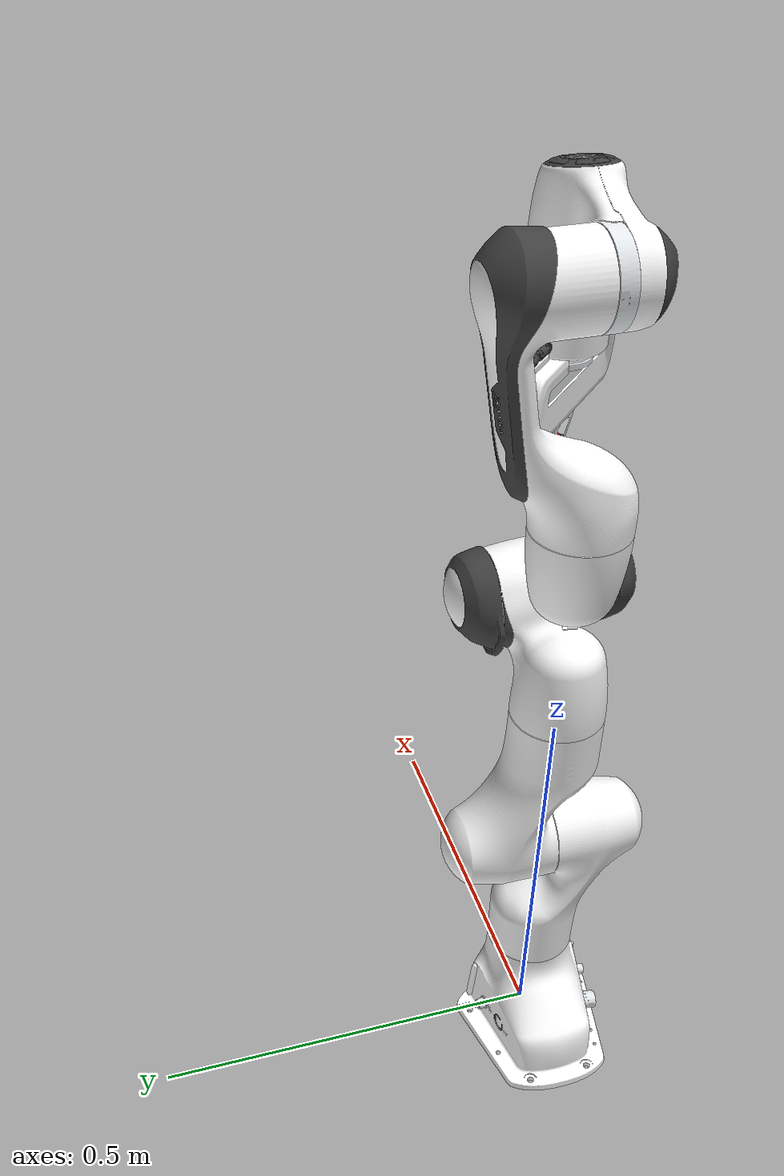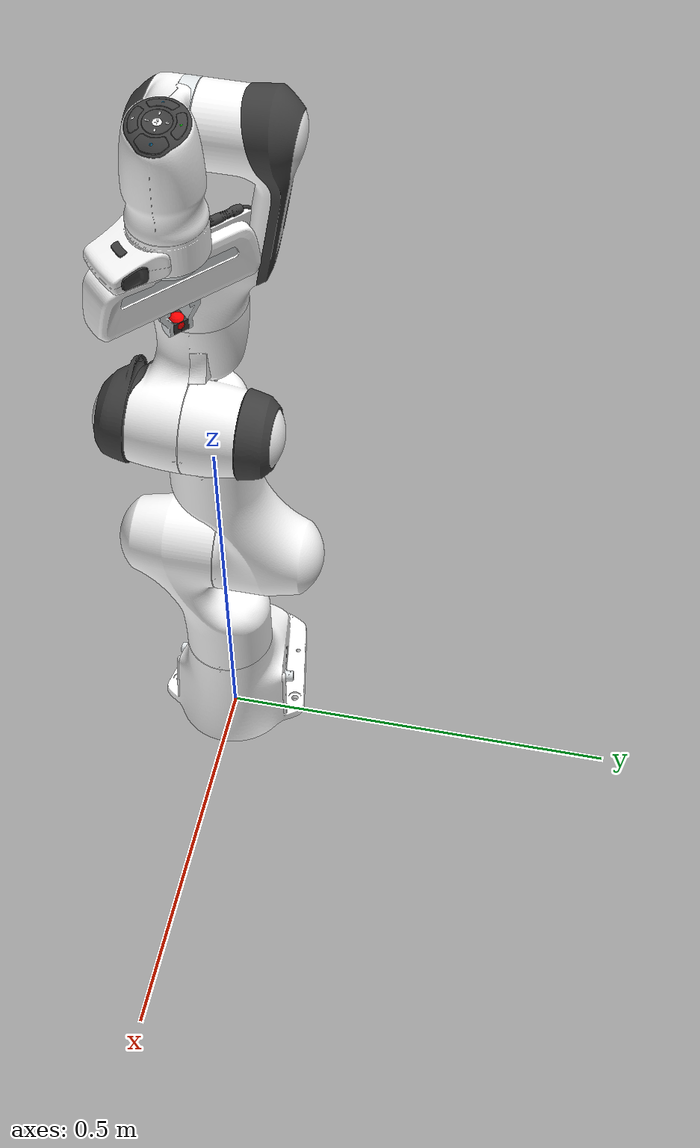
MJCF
<mujoco model="panda">
  <compiler angle="radian" meshdir="assets" autolimits="true"/>

  <option integrator="implicitfast"/>

  <default>
    <default class="panda">
      <material specular="0.5" shininess="0.25"/>
      <joint armature="0.1" damping="1" axis="0 0 1" range="-2.8973 2.8973"/>
      <general dyntype="none" biastype="affine" ctrlrange="-2.8973 2.8973" forcerange="-87 87"/>
      <default class="finger">
        <joint axis="0 1 0" type="slide" range="0 0.04"/>
      </default>

      <default class="visual">
        <geom type="mesh" contype="0" conaffinity="0" group="2"/>
      </default>
      <default class="collision">
        <geom type="mesh" group="3"/>
        <default class="fingertip_pad_collision_1">
          <geom type="box" size="0.0085 0.004 0.0085" pos="0 0.0055 0.0445"/>
        </default>
        <default class="fingertip_pad_collision_2">
          <geom type="box" size="0.003 0.002 0.003" pos="0.0055 0.002 0.05"/>
        </default>
        <default class="fingertip_pad_collision_3">
          <geom type="box" size="0.003 0.002 0.003" pos="-0.0055 0.002 0.05"/>
        </default>
        <default class="fingertip_pad_collision_4">
          <geom type="box" size="0.003 0.002 0.0035" pos="0.0055 0.002 0.0395"/>
        </default>
        <default class="fingertip_pad_collision_5">
          <geom type="box" size="0.003 0.002 0.0035" pos="-0.0055 0.002 0.0395"/>
        </default>
      </default>
    </default>
  </default>

  <asset>
    <material class="panda" name="white" rgba="1 1 1 1"/>
    <material class="panda" name="off_white" rgba="0.901961 0.921569 0.929412 1"/>
    <material class="panda" name="black" rgba="0.25 0.25 0.25 1"/>
    <material class="panda" name="green" rgba="0 1 0 1"/>
    <material class="panda" name="light_blue" rgba="0.039216 0.541176 0.780392 1"/>

    <!-- Collision meshes -->
    <mesh name="link0_c" file="link0.stl"/>
    <mesh name="link1_c" file="link1.stl"/>
    <mesh name="link2_c" file="link2.stl"/>
    <mesh name="link3_c" file="link3.stl"/>
    <mesh name="link4_c" file="link4.stl"/>
    <mesh name="link5_c0" file="link5_collision_0.obj"/>
    <mesh name="link5_c1" file="link5_collision_1.obj"/>
    <mesh name="link5_c2" file="link5_collision_2.obj"/>
    <mesh name="link6_c" file="link6.stl"/>
    <mesh name="link7_c" file="link7.stl"/>
    <mesh name="hand_c" file="hand.stl"/>

    <!-- Visual meshes -->
    <mesh file="link0_0.obj"/>
    <mesh file="link0_1.obj"/>
    <mesh file="link0_2.obj"/>
    <mesh file="link0_3.obj"/>
    <mesh file="link0_4.obj"/>
    <mesh file="link0_5.obj"/>
    <mesh file="link0_7.obj"/>
    <mesh file="link0_8.obj"/>
    <mesh file="link0_9.obj"/>
    <mesh file="link0_10.obj"/>
    <mesh file="link0_11.obj"/>
    <mesh file="link1.obj"/>
    <mesh file="link2.obj"/>
    <mesh file="link3_0.obj"/>
    <mesh file="link3_1.obj"/>
    <mesh file="link3_2.obj"/>
    <mesh file="link3_3.obj"/>
    <mesh file="link4_0.obj"/>
    <mesh file="link4_1.obj"/>
    <mesh file="link4_2.obj"/>
    <mesh file="link4_3.obj"/>
    <mesh file="link5_0.obj"/>
    <mesh file="link5_1.obj"/>
    <mesh file="link5_2.obj"/>
    <mesh file="link6_0.obj"/>
    <mesh file="link6_1.obj"/>
    <mesh file="link6_2.obj"/>
    <mesh file="link6_3.obj"/>
    <mesh file="link6_4.obj"/>
    <mesh file="link6_5.obj"/>
    <mesh file="link6_6.obj"/>
    <mesh file="link6_7.obj"/>
    <mesh file="link6_8.obj"/>
    <mesh file="link6_9.obj"/>
    <mesh file="link6_10.obj"/>
    <mesh file="link6_11.obj"/>
    <mesh file="link6_12.obj"/>
    <mesh file="link6_13.obj"/>
    <mesh file="link6_14.obj"/>
    <mesh file="link6_15.obj"/>
    <mesh file="link6_16.obj"/>
    <mesh file="link7_0.obj"/>
    <mesh file="link7_1.obj"/>
    <mesh file="link7_2.obj"/>
    <mesh file="link7_3.obj"/>
    <mesh file="link7_4.obj"/>
    <mesh file="link7_5.obj"/>
    <mesh file="link7_6.obj"/>
    <mesh file="link7_7.obj"/>
    <mesh file="hand_0.obj"/>
    <mesh file="hand_1.obj"/>
    <mesh file="hand_2.obj"/>
    <mesh file="hand_3.obj"/>
    <mesh file="hand_4.obj"/>
    <mesh file="finger_0.obj"/>
    <mesh file="finger_1.obj"/>
  </asset>

  <worldbody>
    <light name="top" pos="0 0 2" mode="trackcom"/>
    <body name="right/link0" childclass="panda" gravcomp="1">
      <inertial mass="0.629769" pos="-0.041018 -0.00014 0.049974"
        fullinertia="0.00315 0.00388 0.004285 8.2904e-7 0.00015 8.2299e-6"/>
      <geom mesh="link0_0" material="off_white" class="visual"/>
      <geom mesh="link0_1" material="black" class="visual"/>
      <geom mesh="link0_2" material="off_white" class="visual"/>
      <geom mesh="link0_3" material="black" class="visual"/>
      <geom mesh="link0_4" material="off_white" class="visual"/>
      <geom mesh="link0_5" material="black" class="visual"/>
      <geom mesh="link0_7" material="white" class="visual"/>
      <geom mesh="link0_8" material="white" class="visual"/>
      <geom mesh="link0_9" material="black" class="visual"/>
      <geom mesh="link0_10" material="off_white" class="visual"/>
      <geom mesh="link0_11" material="white" class="visual"/>
      <geom mesh="link0_c" class="collision"/>
      <body name="right/link1" pos="0 0 0.333" gravcomp="1">
        <inertial mass="4.970684" pos="0.003875 0.002081 -0.04762"
          fullinertia="0.70337 0.70661 0.0091170 -0.00013900 0.0067720 0.019169"/>
        <joint name="right/joint1"/>
        <geom material="white" mesh="link1" class="visual"/>
        <geom mesh="link1_c" class="collision"/>
        <body name="right/link2" quat="1 -1 0 0" gravcomp="1">
          <inertial mass="0.646926" pos="-0.003141 -0.02872 0.003495"
            fullinertia="0.0079620 2.8110e-2 2.5995e-2 -3.925e-3 1.0254e-2 7.04e-4"/>
          <joint name="right/joint2" range="-1.7628 1.7628"/>
          <geom material="white" mesh="link2" class="visual"/>
          <geom mesh="link2_c" class="collision"/>
          <body name="right/link3" pos="0 -0.316 0" quat="1 1 0 0" gravcomp="1">
            <joint name="right/joint3"/>
            <inertial mass="3.228604" pos="2.7518e-2 3.9252e-2 -6.6502e-2"
              fullinertia="3.7242e-2 3.6155e-2 1.083e-2 -4.761e-3 -1.1396e-2 -1.2805e-2"/>
            <geom mesh="link3_0" material="white" class="visual"/>
            <geom mesh="link3_1" material="white" class="visual"/>
            <geom mesh="link3_2" material="white" class="visual"/>
            <geom mesh="link3_3" material="black" class="visual"/>
            <geom mesh="link3_c" class="collision"/>
            <body name="right/link4" pos="0.0825 0 0" quat="1 1 0 0" gravcomp="1">
              <inertial mass="3.587895" pos="-5.317e-2 1.04419e-1 2.7454e-2"
                fullinertia="2.5853e-2 1.9552e-2 2.8323e-2 7.796e-3 -1.332e-3 8.641e-3"/>
              <joint name="right/joint4" range="-3.0718 -0.0698"/>
              <geom mesh="link4_0" material="white" class="visual"/>
              <geom mesh="link4_1" material="white" class="visual"/>
              <geom mesh="link4_2" material="black" class="visual"/>
              <geom mesh="link4_3" material="white" class="visual"/>
              <geom mesh="link4_c" class="collision"/>
              <body name="right/link5" pos="-0.0825 0.384 0" quat="1 -1 0 0" gravcomp="1">
                <inertial mass="1.225946" pos="-1.1953e-2 4.1065e-2 -3.8437e-2"
                  fullinertia="3.5549e-2 2.9474e-2 8.627e-3 -2.117e-3 -4.037e-3 2.29e-4"/>
                <joint name="right/joint5"/>
                <geom mesh="link5_0" material="black" class="visual"/>
                <geom mesh="link5_1" material="white" class="visual"/>
                <geom mesh="link5_2" material="white" class="visual"/>
                <geom mesh="link5_c0" class="collision"/>
                <geom mesh="link5_c1" class="collision"/>
                <geom mesh="link5_c2" class="collision"/>
                <body name="right/link6" quat="1 1 0 0" gravcomp="1">
                  <inertial mass="1.666555" pos="6.0149e-2 -1.4117e-2 -1.0517e-2"
                    fullinertia="1.964e-3 4.354e-3 5.433e-3 1.09e-4 -1.158e-3 3.41e-4"/>
                  <joint name="right/joint6" range="-0.0175 3.7525"/>
                  <geom mesh="link6_0" material="off_white" class="visual"/>
                  <geom mesh="link6_1" material="white" class="visual"/>
                  <geom mesh="link6_2" material="black" class="visual"/>
                  <geom mesh="link6_3" material="white" class="visual"/>
                  <geom mesh="link6_4" material="white" class="visual"/>
                  <geom mesh="link6_5" material="white" class="visual"/>
                  <geom mesh="link6_6" material="white" class="visual"/>
                  <geom mesh="link6_7" material="light_blue" class="visual"/>
                  <geom mesh="link6_8" material="light_blue" class="visual"/>
                  <geom mesh="link6_9" material="black" class="visual"/>
                  <geom mesh="link6_10" material="black" class="visual"/>
                  <geom mesh="link6_11" material="white" class="visual"/>
                  <geom mesh="link6_12" material="green" class="visual"/>
                  <geom mesh="link6_13" material="white" class="visual"/>
                  <geom mesh="link6_14" material="black" class="visual"/>
                  <geom mesh="link6_15" material="black" class="visual"/>
                  <geom mesh="link6_16" material="white" class="visual"/>
                  <geom mesh="link6_c" class="collision"/>
                  <body name="right/link7" pos="0.088 0 0" quat="1 1 0 0" gravcomp="1">
                    <inertial mass="7.35522e-01" pos="1.0517e-2 -4.252e-3 6.1597e-2"
                      fullinertia="1.2516e-2 1.0027e-2 4.815e-3 -4.28e-4 -1.196e-3 -7.41e-4"/>
                    <joint name="right/joint7"/>
                    <geom mesh="link7_0" material="white" class="visual"/>
                    <geom mesh="link7_1" material="black" class="visual"/>
                    <geom mesh="link7_2" material="black" class="visual"/>
                    <geom mesh="link7_3" material="black" class="visual"/>
                    <geom mesh="link7_4" material="black" class="visual"/>
                    <geom mesh="link7_5" material="black" class="visual"/>
                    <geom mesh="link7_6" material="black" class="visual"/>
                    <geom mesh="link7_7" material="white" class="visual"/>
                    <geom mesh="link7_c" class="collision"/>
                    <body name="right/hand" pos="0 0 0.107" quat="0.9238795 0 0 -0.3826834" gravcomp="1">
                      <site name="attachment_site" rgba="1 0 0 1" size="0.01" group="1" pos = "0 0 0.1" quat="1 0 0 0"/>

                      <inertial mass="0.73" pos="-0.01 0 0.03" diaginertia="0.001 0.0025 0.0017"/>
                      <geom mesh="hand_0" material="off_white" class="visual"/>
                      <geom mesh="hand_1" material="black" class="visual"/>
                      <geom mesh="hand_2" material="black" class="visual"/>
                      <geom mesh="hand_3" material="white" class="visual"/>
                      <geom mesh="hand_4" material="off_white" class="visual"/>
                      <geom mesh="hand_c" class="collision"/>
                      <body name="right/left_finger" pos="0 0 0.0584" gravcomp="1">
                        <inertial mass="0.015" pos="0 0 0" diaginertia="2.375e-6 2.375e-6 7.5e-7"/>
                        <joint name="right/finger_joint1" class="finger"/>
                        <geom mesh="finger_0" material="off_white" class="visual"/>
                        <geom mesh="finger_1" material="black" class="visual"/>
                        <geom mesh="finger_0" class="collision"/>
                        <geom class="fingertip_pad_collision_1"/>
                        <geom class="fingertip_pad_collision_2"/>
                        <geom class="fingertip_pad_collision_3"/>
                        <geom class="fingertip_pad_collision_4"/>
                        <geom class="fingertip_pad_collision_5"/>
                      </body>
                      <body name="right/right_finger" pos="0 0 0.0584" quat="0 0 0 1" gravcomp="1">
                        <inertial mass="0.015" pos="0 0 0" diaginertia="2.375e-6 2.375e-6 7.5e-7"/>
                        <joint name="right/finger_joint2" class="finger"/>
                        <geom mesh="finger_0" material="off_white" class="visual"/>
                        <geom mesh="finger_1" material="black" class="visual"/>
                        <geom mesh="finger_0" class="collision"/>
                        <geom class="fingertip_pad_collision_1"/>
                        <geom class="fingertip_pad_collision_2"/>
                        <geom class="fingertip_pad_collision_3"/>
                        <geom class="fingertip_pad_collision_4"/>
                        <geom class="fingertip_pad_collision_5"/>
                      </body>
                    </body>
                  </body>
                </body>
              </body>
            </body>
          </body>
        </body>
      </body>
    </body>

    <body name="left/link0" childclass="panda" gravcomp="1">
      <inertial mass="0.629769" pos="-0.041018 -0.00014 0.049974"
        fullinertia="0.00315 0.00388 0.004285 8.2904e-7 0.00015 8.2299e-6"/>
      <geom mesh="link0_0" material="off_white" class="visual"/>
      <geom mesh="link0_1" material="black" class="visual"/>
      <geom mesh="link0_2" material="off_white" class="visual"/>
      <geom mesh="link0_3" material="black" class="visual"/>
      <geom mesh="link0_4" material="off_white" class="visual"/>
      <geom mesh="link0_5" material="black" class="visual"/>
      <geom mesh="link0_7" material="white" class="visual"/>
      <geom mesh="link0_8" material="white" class="visual"/>
      <geom mesh="link0_9" material="black" class="visual"/>
      <geom mesh="link0_10" material="off_white" class="visual"/>
      <geom mesh="link0_11" material="white" class="visual"/>
      <geom mesh="link0_c" class="collision"/>
      <body name="left/link1" pos="0 0 0.333" gravcomp="1">
        <inertial mass="4.970684" pos="0.003875 0.002081 -0.04762"
          fullinertia="0.70337 0.70661 0.0091170 -0.00013900 0.0067720 0.019169"/>
        <joint name="left/joint1"/>
        <geom material="white" mesh="link1" class="visual"/>
        <geom mesh="link1_c" class="collision"/>
        <body name="left/link2" quat="1 -1 0 0" gravcomp="1">
          <inertial mass="0.646926" pos="-0.003141 -0.02872 0.003495"
            fullinertia="0.0079620 2.8110e-2 2.5995e-2 -3.925e-3 1.0254e-2 7.04e-4"/>
          <joint name="left/joint2" range="-1.7628 1.7628"/>
          <geom material="white" mesh="link2" class="visual"/>
          <geom mesh="link2_c" class="collision"/>
          <body name="left/link3" pos="0 -0.316 0" quat="1 1 0 0" gravcomp="1">
            <joint name="left/joint3"/>
            <inertial mass="3.228604" pos="2.7518e-2 3.9252e-2 -6.6502e-2"
              fullinertia="3.7242e-2 3.6155e-2 1.083e-2 -4.761e-3 -1.1396e-2 -1.2805e-2"/>
            <geom mesh="link3_0" material="white" class="visual"/>
            <geom mesh="link3_1" material="white" class="visual"/>
            <geom mesh="link3_2" material="white" class="visual"/>
            <geom mesh="link3_3" material="black" class="visual"/>
            <geom mesh="link3_c" class="collision"/>
            <body name="left/link4" pos="0.0825 0 0" quat="1 1 0 0" gravcomp="1">
              <inertial mass="3.587895" pos="-5.317e-2 1.04419e-1 2.7454e-2"
                fullinertia="2.5853e-2 1.9552e-2 2.8323e-2 7.796e-3 -1.332e-3 8.641e-3"/>
              <joint name="left/joint4" range="-3.0718 -0.0698"/>
              <geom mesh="link4_0" material="white" class="visual"/>
              <geom mesh="link4_1" material="white" class="visual"/>
              <geom mesh="link4_2" material="black" class="visual"/>
              <geom mesh="link4_3" material="white" class="visual"/>
              <geom mesh="link4_c" class="collision"/>
              <body name="left/link5" pos="-0.0825 0.384 0" quat="1 -1 0 0" gravcomp="1">
                <inertial mass="1.225946" pos="-1.1953e-2 4.1065e-2 -3.8437e-2"
                  fullinertia="3.5549e-2 2.9474e-2 8.627e-3 -2.117e-3 -4.037e-3 2.29e-4"/>
                <joint name="left/joint5"/>
                <geom mesh="link5_0" material="black" class="visual"/>
                <geom mesh="link5_1" material="white" class="visual"/>
                <geom mesh="link5_2" material="white" class="visual"/>
                <geom mesh="link5_c0" class="collision"/>
                <geom mesh="link5_c1" class="collision"/>
                <geom mesh="link5_c2" class="collision"/>
                <body name="left/link6" quat="1 1 0 0" gravcomp="1">
                  <inertial mass="1.666555" pos="6.0149e-2 -1.4117e-2 -1.0517e-2"
                    fullinertia="1.964e-3 4.354e-3 5.433e-3 1.09e-4 -1.158e-3 3.41e-4"/>
                  <joint name="left/joint6" range="-0.0175 3.7525"/>
                  <geom mesh="link6_0" material="off_white" class="visual"/>
                  <geom mesh="link6_1" material="white" class="visual"/>
                  <geom mesh="link6_2" material="black" class="visual"/>
                  <geom mesh="link6_3" material="white" class="visual"/>
                  <geom mesh="link6_4" material="white" class="visual"/>
                  <geom mesh="link6_5" material="white" class="visual"/>
                  <geom mesh="link6_6" material="white" class="visual"/>
                  <geom mesh="link6_7" material="light_blue" class="visual"/>
                  <geom mesh="link6_8" material="light_blue" class="visual"/>
                  <geom mesh="link6_9" material="black" class="visual"/>
                  <geom mesh="link6_10" material="black" class="visual"/>
                  <geom mesh="link6_11" material="white" class="visual"/>
                  <geom mesh="link6_12" material="green" class="visual"/>
                  <geom mesh="link6_13" material="white" class="visual"/>
                  <geom mesh="link6_14" material="black" class="visual"/>
                  <geom mesh="link6_15" material="black" class="visual"/>
                  <geom mesh="link6_16" material="white" class="visual"/>
                  <geom mesh="link6_c" class="collision"/>
                  <body name="left/link7" pos="0.088 0 0" quat="1 1 0 0" gravcomp="1">
                    <inertial mass="7.35522e-01" pos="1.0517e-2 -4.252e-3 6.1597e-2"
                      fullinertia="1.2516e-2 1.0027e-2 4.815e-3 -4.28e-4 -1.196e-3 -7.41e-4"/>
                    <joint name="left/joint7"/>
                    <geom mesh="link7_0" material="white" class="visual"/>
                    <geom mesh="link7_1" material="black" class="visual"/>
                    <geom mesh="link7_2" material="black" class="visual"/>
                    <geom mesh="link7_3" material="black" class="visual"/>
                    <geom mesh="link7_4" material="black" class="visual"/>
                    <geom mesh="link7_5" material="black" class="visual"/>
                    <geom mesh="link7_6" material="black" class="visual"/>
                    <geom mesh="link7_7" material="white" class="visual"/>
                    <geom mesh="link7_c" class="collision"/>
                    <body name="left/hand" pos="0 0 0.107" quat="0.9238795 0 0 -0.3826834" gravcomp="1">
                      <site name="attachment_site" rgba="1 0 0 1" size="0.01" group="1" pos = "0 0 0.1" quat="1 0 0 0"/>

                      <inertial mass="0.73" pos="-0.01 0 0.03" diaginertia="0.001 0.0025 0.0017"/>
                      <geom mesh="hand_0" material="off_white" class="visual"/>
                      <geom mesh="hand_1" material="black" class="visual"/>
                      <geom mesh="hand_2" material="black" class="visual"/>
                      <geom mesh="hand_3" material="white" class="visual"/>
                      <geom mesh="hand_4" material="off_white" class="visual"/>
                      <geom mesh="hand_c" class="collision"/>
                      <body name="left/left_finger" pos="0 0 0.0584" gravcomp="1">
                        <inertial mass="0.015" pos="0 0 0" diaginertia="2.375e-6 2.375e-6 7.5e-7"/>
                        <joint name="left/finger_joint1" class="finger"/>
                        <geom mesh="finger_0" material="off_white" class="visual"/>
                        <geom mesh="finger_1" material="black" class="visual"/>
                        <geom mesh="finger_0" class="collision"/>
                        <geom class="fingertip_pad_collision_1"/>
                        <geom class="fingertip_pad_collision_2"/>
                        <geom class="fingertip_pad_collision_3"/>
                        <geom class="fingertip_pad_collision_4"/>
                        <geom class="fingertip_pad_collision_5"/>
                      </body>
                      <body name="left/right_finger" pos="0 0 0.0584" quat="0 0 0 1" gravcomp="1">
                        <inertial mass="0.015" pos="0 0 0" diaginertia="2.375e-6 2.375e-6 7.5e-7"/>
                        <joint name="left/finger_joint2" class="finger"/>
                        <geom mesh="finger_0" material="off_white" class="visual"/>
                        <geom mesh="finger_1" material="black" class="visual"/>
                        <geom mesh="finger_0" class="collision"/>
                        <geom class="fingertip_pad_collision_1"/>
                        <geom class="fingertip_pad_collision_2"/>
                        <geom class="fingertip_pad_collision_3"/>
                        <geom class="fingertip_pad_collision_4"/>
                        <geom class="fingertip_pad_collision_5"/>
                      </body>
                    </body>
                  </body>
                </body>
              </body>
            </body>
          </body>
        </body>
      </body>
    </body>

  </worldbody>

  <tendon>
    <fixed name="split">
      <joint joint="finger_joint1" coef="0.5"/>
      <joint joint="finger_joint2" coef="0.5"/>
    </fixed>
  </tendon>

  <equality>
    <joint joint1="finger_joint1" joint2="finger_joint2" solimp="0.95 0.99 0.001" solref="0.005 1"/>
  </equality>

  <actuator>

    <motor name="joint1" joint="joint1" ctrlrange="-87 87"/>
    <motor name="joint2" joint="joint2" ctrlrange="-87 87"/>
    <motor name="joint3" joint="joint3" ctrlrange="-87 87"/>
    <motor name="joint4" joint="joint4" ctrlrange="-87 87"/>
    <motor name="joint5" joint="joint5" ctrlrange="-12 12"/>
    <motor name="joint6" joint="joint6" ctrlrange="-12 12"/>
    <motor name="joint7" joint="joint7" ctrlrange="-12 12"/>
    <general class="panda" name="actuator8" tendon="split" forcerange="-100 100" ctrlrange="0 255"
      gainprm="0.1568627451 0 0" biasprm="0 -100 -10"/>
    </actuator>
</mujoco>
